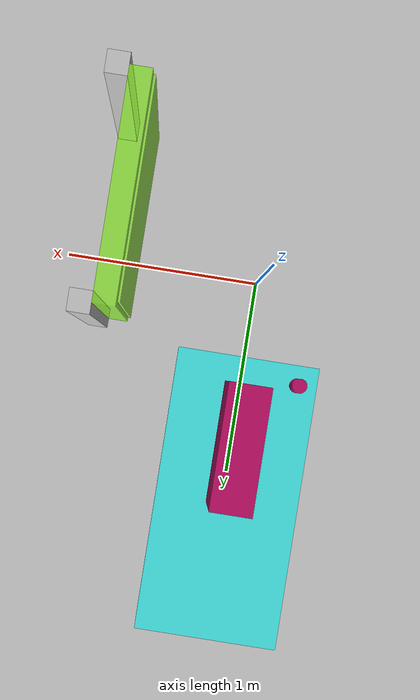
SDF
<sdf version='1.10'>
  <world name='BenchmarkWallSensored'>
    <physics name='default_physics' type='dart'>
      <max_step_size>0.002</max_step_size>
      <real_time_factor>1.0</real_time_factor>
      <real_time_update_rate>500</real_time_update_rate>
      <dart>
        <collision_detector>bullet</collision_detector>
      </dart>
    </physics>
    <plugin name='gz::sim::systems::Physics' filename='gz-sim-physics-system'/>
    <plugin name='gz::sim::systems::UserCommands' filename='gz-sim-user-commands-system'/>
    <plugin name='gz::sim::systems::SceneBroadcaster' filename='gz-sim-scene-broadcaster-system'/>
    <plugin name='gz::sim::systems::Contact' filename='gz-sim-contact-system'/>
    <plugin name='gz::sim::systems::ForceTorque' filename='gz-sim-forcetorque-system'/>
    <gravity>0.0 0.00 -9.80665</gravity>
    <magnetic_field>1.83535e-05 -7.7993e-06 -1.46974e-05</magnetic_field>
    <atmosphere type='adiabatic'/>
    <scene>
      <ambient>0.40 0.40 0.40 1</ambient>
      <background>0.70 0.69 0.69 1</background>
      <shadows>false</shadows>
    </scene>
    <model name='ground_plane'>
      <static>true</static>
      <link name='link'>
        <collision name='collision'>
          <geometry>
            <plane>
              <normal>0 0 1</normal>
              <size>100 100</size>
            </plane>
          </geometry>
          <surface>
            <friction>
              <ode/>
            </friction>
            <bounce/>
            <contact/>
          </surface>
        </collision>
        <visual name='visual'>
          <geometry>
            <plane>
              <normal>0 0 1</normal>
              <size>100 100</size>
            </plane>
          </geometry>
          <material>
            <ambient>0.800000012 0.800000012 0.800000012 1</ambient>
            <diffuse>0.800000012 0.800000012 0.800000012 1</diffuse>
            <specular>0.800000012 0.800000012 0.800000012 1</specular>
          </material>
        </visual>
        <pose>0 0 0 0 0 0</pose>
        <inertial>
          <pose>0 0 0 0 0 0</pose>
          <mass>1</mass>
          <inertia>
            <ixx>1</ixx>
            <ixy>0</ixy>
            <ixz>0</ixz>
            <iyy>1</iyy>
            <iyz>0</iyz>
            <izz>1</izz>
          </inertia>
        </inertial>
        <enable_wind>false</enable_wind>
      </link>
      <pose>0 0 0 0 0 0</pose>
      <self_collide>false</self_collide>
    </model>
    <model name='wall_support'>
      <static>true</static>
      <pose>0 0 0 0 0 0</pose>
      <link name='wall_support_left'>
        <collision name='wall_support_left_collision'>
          <geometry>
            <box>
              <size>0.1 0.1 1.2</size>
            </box>
          </geometry>
          <surface>
            <friction>
              <ode/>
            </friction>
            <bounce/>
            <contact/>
          </surface>
        </collision>
        <visual name='wall_support_left_visual'>
          <geometry>
            <box>
              <size>0.1 0.1 1.2</size>
            </box>
          </geometry>
          <material>
            <ambient>0.8 0.8 0.8 1</ambient>
            <diffuse>0.8 0.8 0.8 1</diffuse>
            <specular>0.8 0.8 0.8 1</specular>
          </material>
        </visual>
        <pose>0.79 0.30 0.60 0 0 0</pose>
      </link>
      <link name='wall_support_right'>
        <collision name='wall_support_right_collision'>
          <geometry>
            <box>
              <size>0.1 0.1 1.2</size>
            </box>
          </geometry>
          <surface>
            <friction>
              <ode/>
            </friction>
            <bounce/>
            <contact/>
          </surface>
        </collision>
        <visual name='wall_support_right_visual'>
          <geometry>
            <box>
              <size>0.1 0.1 1.2</size>
            </box>
          </geometry>
          <material>
            <ambient>0.8 0.8 0.8 1</ambient>
            <diffuse>0.8 0.8 0.8 1</diffuse>
            <specular>0.8 0.8 0.8 1</specular>
          </material>
        </visual>
        <pose>0.79 -0.70 0.60 0 0 0</pose>
      </link>
    </model>
    <model name='rigid_wall'>
      <pose>0.69 -0.20 0.60 0 0 0</pose>
      <link name='rigid_wall_link'>
        <inertial>
          <inertia>
            <ixx>47.580</ixx>
            <ixy>0</ixy>
            <ixz>0</ixz>
            <iyy>28.275</iyy>
            <iyz>0</iyz>
            <izz>19.695</izz>
          </inertia>
          <mass>234.0</mass>
          <pose>0 0 0 0 0 0</pose>
        </inertial>
        <collision name='rigid_wall_collision'>
          <geometry>
            <box>
              <size>0.1 1.0 1.2</size>
            </box>
          </geometry>
        </collision>
        <visual name='rigid_wall_visual'>
          <geometry>
            <box>
              <size>0.1 1.0 1.2</size>
            </box>
          </geometry>
          <material>
            <ambient>0.60 1.0 0.20 1.0</ambient>
            <diffuse>0.60 1.0 0.20 0.80</diffuse>
          </material>
        </visual>
        <pose>0 0 0 0 0 0</pose>
      </link>
      <link name='wall_sensor_link'>
        <inertial>
          <inertia>
            <ixx>0.19313103</ixx>
            <ixy>0</ixy>
            <ixz>0</ixz>
            <iyy>0.11463322</iyy>
            <iyz>0</iyz>
            <izz>0.07851485</izz>
          </inertia>
          <mass>1.0222179</mass>
          <pose>0 0 0 0 0 0</pose>
        </inertial>
        <visual name='wall_sensor_visual'>
          <geometry>
            <box>
              <size>0.01 0.96 1.16</size>
            </box>
          </geometry>
          <material>
            <ambient>0.60 1.0 0.20 1.0</ambient>
            <diffuse>0.60 1.0 0.20 0.80</diffuse>
          </material>
        </visual>
        <collision name='wall_sensor_collision'>
          <geometry>
            <box>
              <size>0.01 0.96 1.16</size>
            </box>
          </geometry>
          <surface>
            <friction>
              <ode>
                <mu>0.7</mu>
                <mu2>0.7</mu2>
              </ode>
            </friction>
            <bounce/>
            <contact/>
          </surface>
        </collision>
        <collision name='wall_sensor_c1'>
          <pose>0.005 -0.48 -0.58  0 0 0</pose>
          <geometry>
            <sphere>
              <radius>0.005</radius>
            </sphere>
          </geometry>
        </collision>
        <collision name='wall_sensor_c2'>
          <pose>0.005 0.48 -0.58  0 0 0</pose>
          <geometry>
            <sphere>
              <radius>0.005</radius>
            </sphere>
          </geometry>
        </collision>
        <collision name='wall_sensor_c3'>
          <pose>0.005 -0.48 0.58  0 0 0</pose>
          <geometry>
            <sphere>
              <radius>0.005</radius>
            </sphere>
          </geometry>
        </collision>
        <collision name='wall_sensor_c4'>
          <pose>0.005 0.48 0.58  0 0 0</pose>
          <geometry>
            <sphere>
              <radius>0.005</radius>
            </sphere>
          </geometry>
        </collision>
        <pose>-0.06 0 0 0 0 0</pose>
      </link>

      <joint name='wall_ft_sensor_joint' type='fixed'>
        <parent>rigid_wall_link</parent>
        <child>wall_sensor_link</child>
        <sensor name='force_torque_sensor' type='force_torque'>
          <update_rate>200</update_rate>
          <always_on>true</always_on>
          <topic>wall_ft_sensor</topic>
          <force_torque>
            <frame>sensor</frame>
            <measure_direction>parent_to_child</measure_direction>
          </force_torque>
        </sensor>
      </joint>
    </model>
    <model name='rigid_table'>
      <pose>0.0 1.10 0.20 0 0 0</pose>
      <link name='rigid_table_link'>
        <inertial>
          <inertia>
            <ixx>1</ixx>
            <ixy>0</ixy>
            <ixz>0</ixz>
            <iyy>1</iyy>
            <iyz>0</iyz>
            <izz>1</izz>
          </inertia>
          <mass>1</mass>
          <pose>0 0 0 0 0 0</pose>
        </inertial>
        <collision name='rigid_table_collision'>
          <geometry>
            <box>
              <size>0.70 1.40 0.40</size>
            </box>
          </geometry>
          <surface>
            <friction>
              <ode>
                <mu>0.4</mu>
                <mu2>0.4</mu2>
              </ode>
            </friction>
            <bounce/>
            <contact/>
          </surface>
        </collision>
        <visual name='rigid_table_visual'>
          <geometry>
            <box>
              <size>0.70 1.40 0.40</size>
            </box>
          </geometry>
          <material>
            <ambient>0.20 1.0 1.0 1.0</ambient>
            <diffuse>0.20 1.0 1.0 0.80</diffuse>
            <specular>1 1 1 1</specular>
          </material>
        </visual>
        <pose>0 0 0 0 0 0</pose>
      </link>
      <static>true</static>
    </model>
    <model name='free_object'>
      <pose>-0.25 0.50 0.471 0 0 0</pose>
      <link name='free_object_link'>
        <inertial>
          <inertia>
            <ixx>7.100e-4</ixx>
            <ixy>0</ixy>
            <ixz>0</ixz>
            <iyy>7.100e-4</iyy>
            <iyz>0</iyz>
            <izz>2.200e-4</izz>
          </inertia>
          <mass>0.365</mass>
          <pose>0 0 0 0 0 0</pose>
        </inertial>
        <collision name='free_object_collision'>
          <geometry>
            <cylinder>
              <radius>0.035</radius>
              <length>0.14</length>
            </cylinder>
          </geometry>
          <surface>
            <friction>
              <ode/>
            </friction>
            <bounce/>
            <contact/>
          </surface>
        </collision>
        <visual name='free_object_visual'>
          <geometry>
            <cylinder>
              <radius>0.035</radius>
              <length>0.14</length>
            </cylinder>
          </geometry>
          <material>
            <ambient>0.80 0 0.40 1.0</ambient>
            <diffuse>0.80 0 0.40 0.88</diffuse>
            <specular>1 1 1 1</specular>
          </material>
        </visual>
        <pose>0 0 0 0 0 0</pose>
        <enable_wind>false</enable_wind>
      </link>
      <static>false</static>
    </model>
    <model name='push_object'>
      <pose>0.0 0.83 0.60 0 0 0</pose>
      <link name='push_object_link'>
        <inertial>
          <inertia>
            <ixx>0.0433332</ixx>
            <ixy>0</ixy>
            <ixz>0</ixz>
            <iyy>0.0166666</iyy>
            <iyz>0</iyz>
            <izz>0.0333332</izz>
          </inertia>
          <mass>1.0</mass>
          <pose>0 0 0 0 0 0</pose>
        </inertial>
        <collision name='push_object_collision'>
          <geometry>
            <box>
              <size>0.20 0.60 0.40</size>
            </box>
          </geometry>
          <surface>
            <friction>
              <ode/>
            </friction>
            <bounce/>
            <contact/>
          </surface>
        </collision>
        <visual name='push_object_visual'>
          <geometry>
            <box>
              <size>0.20 0.60 0.40</size>
            </box>
          </geometry>
          <material>
            <ambient>0.80 0 0.40 1.0</ambient>
            <diffuse>0.80 0 0.40 0.88</diffuse>
            <specular>1 1 1 1</specular>
          </material>
        </visual>
        <pose>0 0 0 0 0 0</pose>
        <enable_wind>false</enable_wind>
      </link>
      <static>false</static>
    </model>
    <light name='sun' type='directional'>
      <pose>0 0 10 0 0 0</pose>
      <cast_shadows>false</cast_shadows>
      <intensity>1</intensity>
      <direction>0.5 0.10 -0.90</direction>
      <diffuse>0.80 0.80 0.80 1</diffuse>
      <specular>0.200 0.200 0.200 1</specular>
      <attenuation>
        <range>1000</range>
        <linear>0.01</linear>
        <constant>0.900</constant>
        <quadratic>0.001</quadratic>
      </attenuation>
      <spot>
        <inner_angle>0</inner_angle>
        <outer_angle>0</outer_angle>
        <falloff>0</falloff>
      </spot>
    </light>
  </world>
</sdf>
